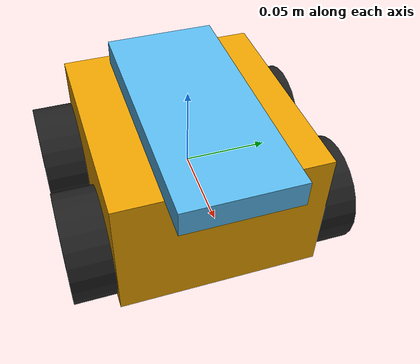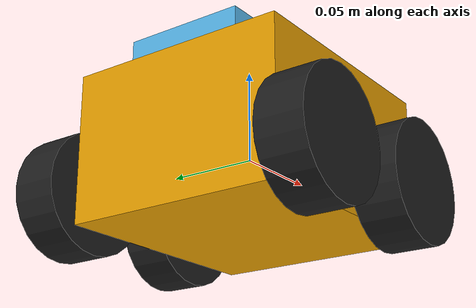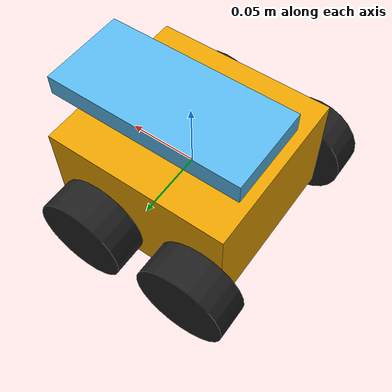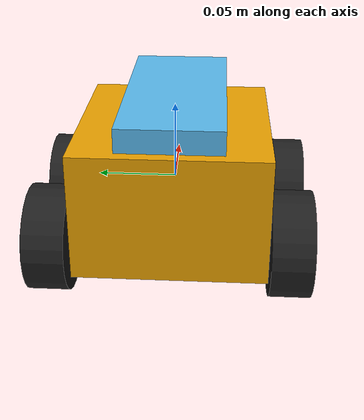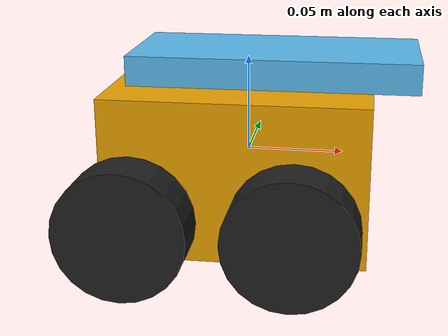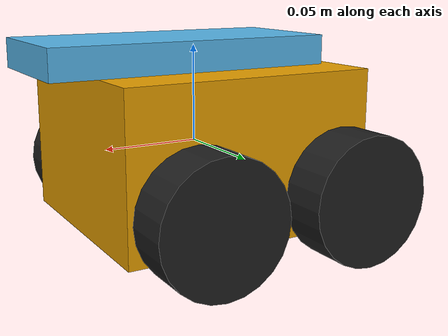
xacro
<?xml version="1.0"?>
<robot xmlns:xacro="http://ros.org/wiki/xacro" name="adeept_awr">
  <!-- Variables for chassis -->
  <xacro:property name="c_len_x" value="0.13"/>
  <xacro:property name="c_len_y" value="0.12"/>
  <xacro:property name="c_len_z" value="0.08"/>
  <xacro:property name="c_mass" value="0.5"/>
  <link name="chassis">
    <origin xyz="0.0 0.0 0.055"/>
    <visual>
      <geometry>
        <box size="${c_len_x} ${c_len_y} ${c_len_z}"/>
      </geometry>
    </visual>
    <collision>
      <geometry>
        <box size="${c_len_x} ${c_len_y} ${c_len_z}"/>
      </geometry>
    </collision>
    <inertial>
      <origin xyz="0.0 0.0 0.0"/>
      <mass value="${c_mass}"/>
      <inertia ixx="${(c_mass/12) * (c_len_y*c_len_y + c_len_z*c_len_z)}" ixy="0.0" ixz="0" iyy="${(c_mass/12) * (c_len_x*c_len_x + c_len_z*c_len_z)}" iyz="0.0" izz="${(c_mass/12) * (c_len_y*c_len_y + c_len_x*c_len_x)}"/>
    </inertial>
  </link>

  <!-- Variables for battery -->
  <xacro:property name="b_len_x" value="0.145"/>
  <xacro:property name="b_len_y" value="0.065"/>
  <xacro:property name="b_len_z" value="0.015"/>
  <xacro:property name="b_mass" value="0.23"/>
  <link name="battery">
    <origin xyz="0.0 0.0 0.0"/>
    <visual>
      <geometry>
        <box size="${b_len_x} ${b_len_y} ${b_len_z}"/>
      </geometry>
    </visual>
    <collision>
      <geometry>
        <box size="${b_len_x} ${b_len_y} ${b_len_z}"/>
      </geometry>
    </collision>
    <inertial>
      <origin xyz="0.0 0.0 0.0"/>
      <mass value="${b_mass}"/>
      <inertia ixx="${(b_mass/12) * (b_len_y*b_len_y + b_len_z*b_len_z)}" ixy="0.0" ixz="0" iyy="${(b_mass/12) * (b_len_x*b_len_x + b_len_z*b_len_z)}" iyz="0.0" izz="${(b_mass/12) * (b_len_y*b_len_y + b_len_x*b_len_x)}"/>
    </inertial>
  </link>

  <!-- Variables for wheels -->
  <xacro:property name="w_rad" value="0.0325"/>
  <xacro:property name="w_len" value="0.025"/>
  <xacro:property name="w_mass" value="0.03"/>
  <link name="front_left_wheel">
    <visual>
      <origin xyz="0.0 0.0125 0.0" rpy="1.5708 0 0"/>
      <geometry>
        <cylinder radius="${w_rad}" length="${w_len}"/>
      </geometry>
    </visual>
    <collision>
      <origin xyz="0.0 0.0125 0.0" rpy="1.5708 0 0"/>
      <geometry>
        <cylinder radius="${w_rad}" length="${w_len}"/>
      </geometry>
    </collision>
    <inertial>
      <origin xyz="0.0 0.0125 0.0"/>
      <mass value="${w_mass}"/>
      <inertia ixx="${(w_mass/12) * (3*w_rad*w_rad + w_len*w_len)}" ixy="0.0" ixz="0" iyy="${(w_mass/2) * (w_rad*w_rad)}" iyz="0.0" izz="${(w_mass/12) * (3*w_rad*w_rad + w_len*w_len)}"/>
    </inertial>
  </link>
  <link name="front_right_wheel">
    <visual>
      <origin xyz="0.0 -0.0125 0.0" rpy="1.5708 0 0"/>
      <geometry>
        <cylinder radius="${w_rad}" length="${w_len}"/>
      </geometry>
    </visual>
    <collision>
      <origin xyz="0.0 -0.0125 0.0" rpy="1.5708 0 0"/>
      <geometry>
        <cylinder radius="${w_rad}" length="${w_len}"/>
      </geometry>
    </collision>
    <inertial>
      <origin xyz="0.0 -0.0125 0.0"/>
      <mass value="${w_mass}"/>
      <inertia ixx="${(w_mass/12) * (3*w_rad*w_rad + w_len*w_len)}" ixy="0.0" ixz="0" iyy="${(w_mass/2) * (w_rad*w_rad)}" iyz="0.0" izz="${(w_mass/12) * (3*w_rad*w_rad + w_len*w_len)}"/>
    </inertial>
  </link>
  <link name="rear_left_wheel">
    <visual>
      <origin xyz="0.0 0.0125 0.0" rpy="1.5708 0 0"/>
      <geometry>
        <cylinder radius="${w_rad}" length="${w_len}"/>
      </geometry>
    </visual>
    <collision>
      <origin xyz="0.0 0.0125 0.0" rpy="1.5708 0 0"/>
      <geometry>
        <cylinder radius="${w_rad}" length="${w_len}"/>
      </geometry>
    </collision>
    <inertial>
      <origin xyz="0.0 0.0125 0.0"/>
      <mass value="${w_mass}"/>
      <inertia ixx="${(w_mass/12) * (3*w_rad*w_rad + w_len*w_len)}" ixy="0.0" ixz="0" iyy="${(w_mass/2) * (w_rad*w_rad)}" iyz="0.0" izz="${(w_mass/12) * (3*w_rad*w_rad + w_len*w_len)}"/>
    </inertial>
  </link>
  <link name="rear_right_wheel">
    <visual>
      <origin xyz="0.0 -0.0125 0.0" rpy="1.5708 0 0"/>
      <geometry>
        <cylinder radius="${w_rad}" length="${w_len}"/>
      </geometry>
    </visual>
    <collision>
      <origin xyz="0.0 -0.0125 0.0" rpy="1.5708 0 0"/>
      <geometry>
        <cylinder radius="${w_rad}" length="${w_len}"/>
      </geometry>
    </collision>
    <inertial>
      <origin xyz="0.0 -0.0125 0.0"/>
      <mass value="${w_mass}"/>
      <inertia ixx="${(w_mass/12) * (3*w_rad*w_rad + w_len*w_len)}" ixy="0.0" ixz="0" iyy="${(w_mass/2) * (w_rad*w_rad)}" iyz="0.0" izz="${(w_mass/12) * (3*w_rad*w_rad + w_len*w_len)}"/>
    </inertial>
  </link>
  <joint name="battery_mount" type="fixed">
    <parent link="chassis"/>
    <child link="battery"/>
    <origin xyz="0.015 0.0 0.0475"/>
  </joint>
  <joint name="rear_right_axle" type="continuous">
    <parent link="chassis"/>
    <child link="rear_right_wheel"/>
    <origin xyz="-0.05 -0.06 -0.02"/>
    <axis xyz="0 1 0" />
    <limit effort="0.0784532" velocity="1.55"/>
    <dynamics friction="0.04"/>
  </joint>
  <joint name="rear_left_axle" type="continuous">
    <parent link="chassis"/>
    <child link="rear_left_wheel"/>
    <origin xyz="-0.05 0.06 -0.02"/>
    <axis xyz="0 1 0" />
    <limit effort="0.0784532" velocity="1.55"/>
    <dynamics friction="0.04"/>
  </joint>
  <joint name="front_left_axle" type="continuous">
    <parent link="chassis"/>
    <child link="front_left_wheel"/>
    <origin xyz="0.03 0.06 -0.02"/>
    <axis xyz="0 1 0" />
    <limit effort="0.0784532" velocity="1.55"/>
    <dynamics friction="0.04"/>
  </joint>
  <joint name="front_right_axle" type="continuous">
    <parent link="chassis"/>
    <child link="front_right_wheel"/>
    <origin xyz="0.03 -0.06 -0.02"/>
    <axis xyz="0 1 0" />
    <limit effort="0.0784532" velocity="1.55"/>
    <dynamics friction="0.04"/>
  </joint>

  <gazebo reference="front_right_wheel">
    <mu1>0.8693</mu1>
    <mu2>0.8693</mu2>
    <material>Gazebo/Black</material>
  </gazebo>
  <gazebo reference="front_left_wheel">
    <mu1>0.8693</mu1>
    <mu2>0.8693</mu2>
    <material>Gazebo/Black</material>
  </gazebo>
  <gazebo reference="rear_right_wheel">
    <mu1>0.8693</mu1>
    <mu2>0.8693</mu2>
    <material>Gazebo/Black</material>
  </gazebo>
  <gazebo reference="rear_left_wheel">
    <mu1>0.8693</mu1>
    <mu2>0.8693</mu2>
    <material>Gazebo/Black</material>
  </gazebo>
  <gazebo>
    <plugin name="skid_steer_drive_controller" filename="libgazebo_ros_skid_steer_drive.so">
      <updateRate>30.0</updateRate>
      <leftFrontJoint>front_left_axle</leftFrontJoint>
      <rightFrontJoint>front_right_axle</rightFrontJoint>
      <leftRearJoint>rear_left_axle</leftRearJoint>
      <rightRearJoint>rear_right_axle</rightRearJoint>
      <wheelSeparation>0.150</wheelSeparation>
      <wheelDiameter>0.065</wheelDiameter>
      <robotBaseFrame>chassis</robotBaseFrame>
      <torque>0.0784532</torque>
      <topicName>cmd_vel</topicName>
      <broadcastTF>false</broadcastTF>
    </plugin>
    <plugin name="joint_state_publisher" filename="libgazebo_ros_joint_state_publisher.so">
      <jointName>front_left_axle,front_right_axle,rear_left_axle,rear_right_axle</jointName>
      <updateRate>30.0</updateRate>
      <alwaysOn>true</alwaysOn>
    </plugin>
  </gazebo>
</robot>
